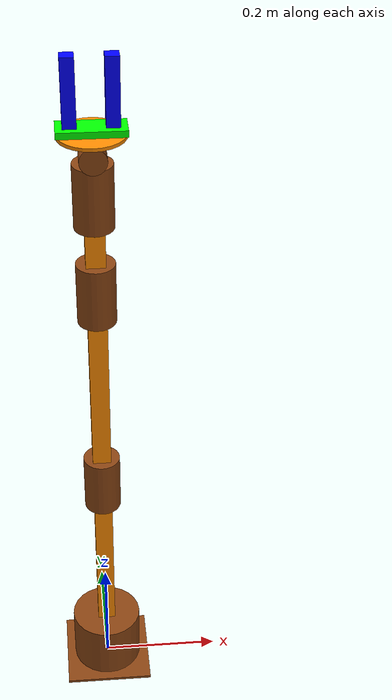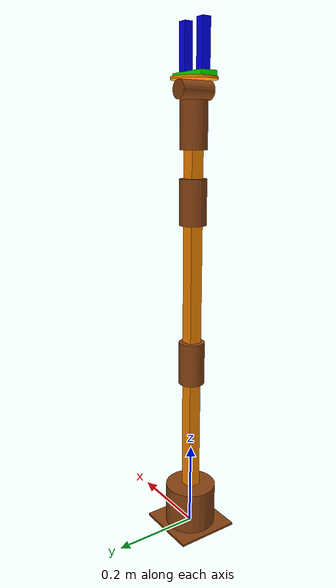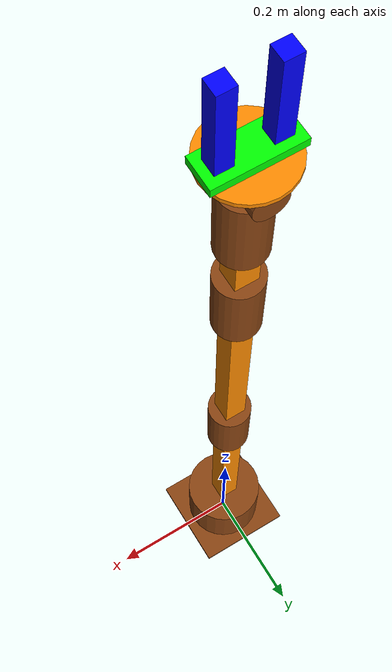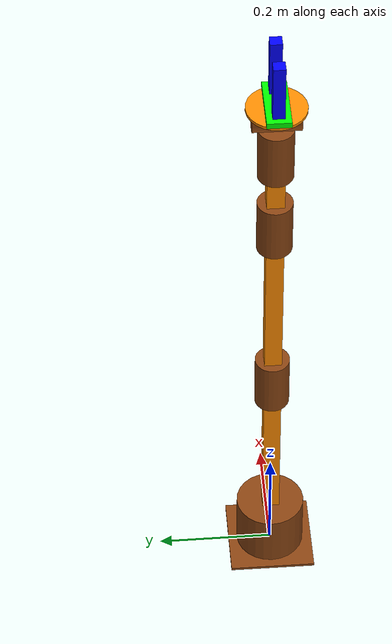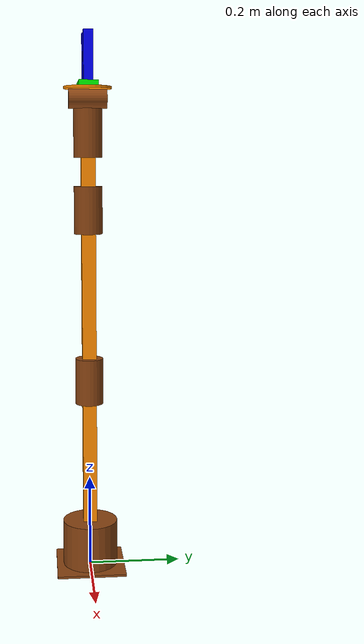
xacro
<?xml version="1.0"?>
<robot name="arm_v1" xmlns:xacro="http://ros.org/wiki/xacro">
    <!-- Constants -->
    <xacro:property name="pi" value="3.14159265"/>

    <!-- Model Parameters -->

    <!-- VISUAL PROPS -->
    <material name="red">
        <color rgba="1 0 0 1" />
    </material>
    <material name="green">
        <color rgba="0 1 0 1" />
    </material>
    <material name="blue">
        <color rgba="0 0 1 1" />
    </material>
    <material name="yellow">
        <color rgba="1 1 0 1" />
    </material>
    <material name="black">
        <color rgba="0 0 0 1" />
    </material>
    <material name="white">
        <color rgba="1 1 1 1" />
    </material>
    <material name="orange">
        <color rgba="${255/255} ${140/255} ${0/255} 1" />
    </material>
    <material name="brown">
        <color rgba="${139/255} ${69/255} ${19/255} 1" />
    </material>

    <!-- INERTIAL FUNCTIONS -->
    <xacro:macro name="default_inertial" params="mass">
        <inertial>
            <mass value="${mass}" />
            <inertia
            ixx="1.0"   ixy="0.0"   ixz="0.0"
                        iyy="1.0"   iyz="0.0"
                                    izz="1.0"
            />
        </inertial>
    </xacro:macro>

    <xacro:macro name="cuboid_inertial" params="mass l w h">
        <inertial>
            <mass value="${mass}" />
            <inertia
            ixx="${1/12*mass*(h*h + l*l)}"   ixy="0.0"   ixz="0.0"
                        iyy="${1/12*mass*(w*w + l*l)}"   iyz="0.0"
                                    izz="${1/12*mass*(w*w + h*h)}"
            />
        </inertial>
    </xacro:macro>

    <xacro:macro name="cylinder_inertial" params="mass r h">
        <inertial>
            <mass value="${mass}" />
            <inertia
            ixx="${1/12*mass*(3*r*r + h*h)}"   ixy="0.0"   ixz="0.0"
                        iyy="${1/12*mass*(3*r*r + h*h)}"   iyz="0.0"
                                    izz="${1/2*mass*(r*r)}"
            />
        </inertial>
    </xacro:macro>

    <!-- MODEL ARM-->
    <link name="base_link">
        <visual>
            <geometry>
                <box size="0.15 0.15 0.005"/>
            </geometry>

            <material name="brown"/>
        </visual>

        <collision>
            <geometry>
                <box size="0.15 0.15 0.005"/>
            </geometry>
        </collision>
    </link>

    <joint name="base_rotate_joint" type="revolute">
        <parent link="base_link"/>
        <child link="base"/>
        <origin xyz="0 0 0" rpy="0 0 0"/>
        <axis xyz="0 0 1"/>
        <limit effort="1000.0" lower="${-pi}" upper="${pi}" velocity="0.7"/>
    </joint>
    <link name="base">
        <visual>
            <origin xyz="0 0 0.0525"/>
            <geometry>
                <cylinder radius="0.06" length="0.1"/>
            </geometry>

            <material name="brown"/>
        </visual>

        <collision>
            <origin xyz="0 0 0.0525"/>
            <geometry>
                <cylinder radius="0.06" length="0.1"/>
            </geometry>
        </collision>
    </link>

    <joint name="shoulder_pitch_joint" type="revolute">
        <parent link="base"/>
        <child link="shoulder"/>
        <origin xyz="0 0 0.1" rpy="0 0 0"/>
        <axis xyz="1 0 0"/>
        <limit effort="1000.0" lower="${-pi/2}" upper="${pi/2}" velocity="0.7"/>
    </joint>
    <link name="shoulder">
        <visual>
            <origin xyz="0 0 0.135"/>
            <geometry>
                <box size="0.03 0.03 0.3"/>
            </geometry>

            <material name="orange"/>
        </visual>

        <collision>
            <origin xyz="0 0 0.135"/>
            <geometry>
                <box size="0.03 0.03 0.3"/>
            </geometry>
        </collision>
    </link>

    <joint name="elbow_support_joint" type="fixed">
        <parent link="shoulder"/>
        <child link="elbow_support"/>
        <origin xyz="0 0 0.285" rpy="0 0 0"/>
    </joint>
    <link name="elbow_support">
        <visual>
            <origin xyz="0 0 0.035"/>
            <geometry>
                <cylinder radius="0.03" length="0.1"/>
            </geometry>

            <material name="brown"/>
        </visual>

        <collision>
            <origin xyz="0 0 0.035"/>
            <geometry>
                <cylinder radius="0.03" length="0.1"/>
            </geometry>
        </collision>
    </link>

    <joint name="elbow_pitch_joint" type="revolute">
        <parent link="elbow_support"/>
        <child link="elbow"/>
        <origin xyz="0 0 0.085" rpy="0 0 0"/>
        <axis xyz="1 0 0"/>
        <limit effort="1000.0" lower="${-7*pi/8}" upper="${7*pi/8}" velocity="0.7"/>
    </joint>
    <link name="elbow">
        <visual>
            <origin xyz="0 0 0.135"/>
            <geometry>
                <box size="0.03 0.03 0.3"/>
            </geometry>

            <material name="orange"/>
        </visual>

        <collision>
            <origin xyz="0 0 0.135"/>
            <geometry>
                <box size="0.03 0.03 0.3"/>
            </geometry>
        </collision>
    </link>

    <joint name="wrist_support_joint" type="fixed">
        <parent link="elbow"/>
        <child link="wrist_support"/>
        <origin xyz="0 0 0.285" rpy="0 0 0"/>
    </joint>
    <link name="wrist_support">
        <visual>
            <origin xyz="0 0 0.035"/>
            <geometry>
                <cylinder radius="0.03" length="0.1"/>
            </geometry>

            <material name="brown"/>
        </visual>

        <collision>
            <origin xyz="0 0 0.035"/>
            <geometry>
                <cylinder radius="0.03" length="0.1"/>
            </geometry>
        </collision>
    </link>

    <joint name="wrist_pitch_joint" type="revolute">
        <parent link="wrist_support"/>
        <child link="wrist_pitch"/>
        <origin xyz="0 0 0.085" rpy="0 0 0"/>
        <axis xyz="1 0 0"/>
        <limit effort="1000.0" lower="${-2*pi/3}" upper="${2*pi/3}" velocity="0.7"/>
    </joint>
    <link name="wrist_pitch">
        <visual>
            <origin xyz="0 0 0.03"/>
            <geometry>
                <box size="0.03 0.03 0.09"/>
            </geometry>

            <material name="orange"/>
        </visual>

        <collision>
            <origin xyz="0 0 0.03"/>
            <geometry>
                <box size="0.03 0.03 0.09"/>
            </geometry>
        </collision>
    </link>

    <joint name="eef_support_joint" type="fixed">
        <parent link="wrist_pitch"/>
        <child link="eef_support"/>
        <origin xyz="0 0 0.075" rpy="0 0 0"/>
    </joint>
    <link name="eef_support">
        <visual>
            <origin xyz="0 0 0.035"/>
            <geometry>
                <cylinder radius="0.03" length="0.1"/>
            </geometry>

            <material name="brown"/>
        </visual>

        <collision>
            <origin xyz="0 0 0.035"/>
            <geometry>
                <cylinder radius="0.03" length="0.1"/>
            </geometry>
        </collision>
    </link>

    <joint name="eef_yaw_joint" type="revolute">
        <parent link="eef_support"/>
        <child link="eef_yaw"/>
        <origin xyz="0 0 0.105" rpy="0 0 0"/>
        <axis xyz="0 1 0"/>
        <limit effort="1000.0" lower="${-pi/4}" upper="${pi/4}" velocity="0.7"/>
    </joint>
    <link name="eef_yaw">
        <visual>
            <origin xyz="0 0 0"  rpy="0 ${pi/2} ${pi/2}"/>
            <geometry>
                <cylinder radius="0.02" length="0.08"/>
            </geometry>

            <material name="brown"/>
        </visual>

        <collision>
            <origin xyz="0 0 0" rpy="0 ${pi/2} ${pi/2}"/>
            <geometry>
                <cylinder radius="0.02" length="0.08"/>
            </geometry>
        </collision>
    </link>

    <joint name="eef_roll_joint" type="revolute">
        <parent link="eef_yaw"/>
        <child link="eef_roll"/>
        <origin xyz="0 0 0.02" rpy="0 0 0"/>
        <axis xyz="0 0 1"/>
        <limit effort="1000.0" lower="${-pi}" upper="${pi}" velocity="0.7"/>
    </joint>
    <link name="eef_roll">
        <visual>
            <origin xyz="0 0 0.0025"/>
            <geometry>
                <cylinder radius="0.05" length="0.005"/>
            </geometry>

            <material name="orange"/>
        </visual>

        <collision>
            <origin xyz="0 0 0.0025"/>
            <geometry>
                <cylinder radius="0.05" length="0.005"/>
            </geometry>
        </collision>
    </link>

    <joint name="safety_link_joint" type="fixed">
        <parent link="eef_roll"/>
        <child link="safety_link"/>
        <origin xyz="0 0 0.005" rpy="0 0 0"/>
    </joint>
    <link name="safety_link">
        <collision>
            <origin xyz="0 0 0"/>
            <geometry>
                <sphere radius="0.03"/>
            </geometry>
        </collision>
    </link>

    <!-- MODEL GRIPPER -->

    <joint name="gripper_support_joint" type="fixed">
        <parent link="safety_link"/>
        <child link="gripper_support"/>
        <origin xyz="0 0 0" rpy="0 0 0"/>
    </joint>
    <link name="gripper_support">
        <visual>
            <origin xyz="0 0 0.005"/>
            <geometry>
                <box size="0.1 0.04 0.01"/>
            </geometry>

            <material name="green"/>
        </visual>

        <collision>
            <origin xyz="0 0 0.005"/>
            <geometry>
                <box size="0.1 0.04 0.01"/>
            </geometry>
        </collision>
    </link>

    <joint name="gripper_leftfinger_joint" type="prismatic">
        <parent link="gripper_support"/>
        <child link="gripper_leftfinger"/>
        <origin xyz="-0.03 0 0.01" rpy="0 0 ${pi/2}"/>
        <axis xyz="0 1 0"/>
        <limit effort="1000.0" lower="0" upper="-0.02" velocity="0.7"/>
    </joint>
    <link name="gripper_leftfinger">
        <visual>
            <origin xyz="0 0 0.05"/>
            <geometry>
                <box size="0.02 0.02 0.1"/>
            </geometry>

            <material name="blue"/>
        </visual>

        <collision>
            <origin xyz="0 0 0.05"/>
            <geometry>
                <box size="0.02 0.02 0.1"/>
            </geometry>
        </collision>
    </link>

    <joint name="gripper_rightfinger_joint" type="prismatic">
        <parent link="gripper_support"/>
        <child link="gripper_rightfinger"/>
        <origin xyz="0.03 0 0.01" rpy="0 0 ${-pi/2}"/>
        <axis xyz="0 1 0"/>
        <limit effort="1000.0" lower="0" upper="-0.02" velocity="0.7"/>
    </joint>
    <link name="gripper_rightfinger">
        <visual>
            <origin xyz="0 0 0.05"/>
            <geometry>
                <box size="0.02 0.02 0.1"/>
            </geometry>

            <material name="blue"/>
        </visual>

        <collision>
            <origin xyz="0 0 0.05"/>
            <geometry>
                <box size="0.02 0.02 0.1"/>
            </geometry>
        </collision>
    </link>
</robot>
